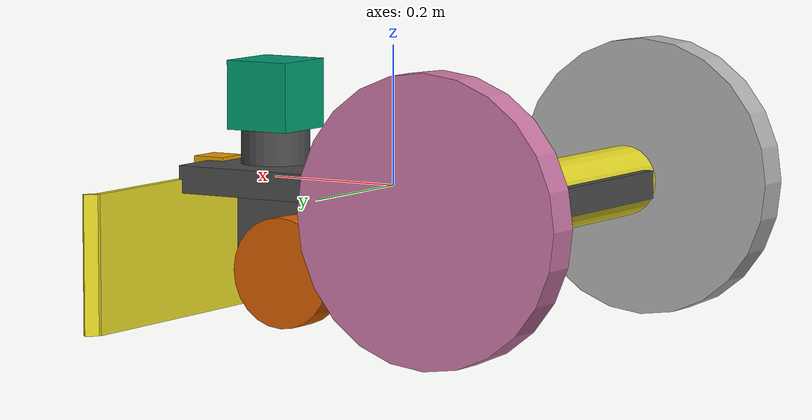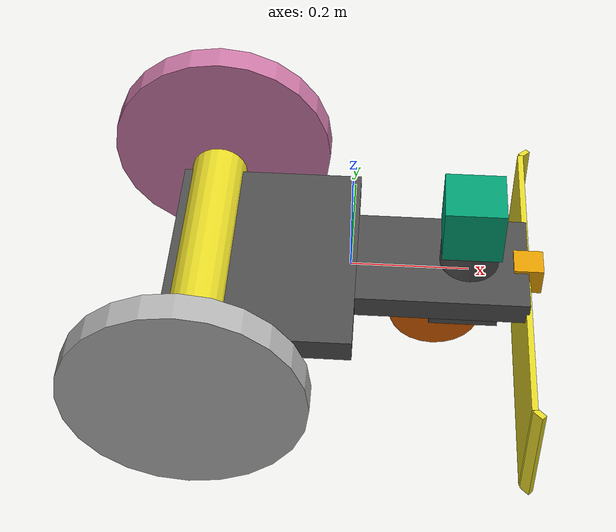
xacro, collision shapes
<?xml version='1.0'?>

<robot name="my_robot" xmlns:xacro="http://www.ros.org/wiki/xacro">

  <xacro:include filename="$(find my_robot)/urdf/my_robot.gazebo" />
  <link name="robot_footprint"></link>

  <joint name="robot_footprint_joint" type="fixed">
    <origin xyz="0 0 0" rpy="0 0 0" />
    <parent link="robot_footprint"/>
    <child link="chassis" />
  </joint>

  <link name='chassis'>
    <pose>0 0 0.1 0 0 0</pose>

    <inertial>
      <mass value="15.0"/>
      <origin xyz="0.0 0 0" rpy=" 0 0 0"/>
      <inertia
          ixx="0.1" ixy="0" ixz="0"
          iyy="0.1" iyz="0"
          izz="0.1"
      />
    </inertial>

    <collision>
      <origin xyz="-0.15 0 0" rpy=" 0 0 0"/>
      <geometry>
        <box size=".32 .4 .04"/>
      </geometry>
    </collision>

    <visual>
      <origin xyz="-0.15 0 0" rpy=" 0 0 0"/>
      <geometry>
        <box size=".32 .4 .04"/>
      </geometry>
    </visual>

    <collision>
      <origin xyz="0.15 0 0" rpy=" 0 0 0"/>
      <geometry>
        <box size=".3 .2 .04"/>
      </geometry>
    </collision>

    <visual>
      <origin xyz="0.15 0 0" rpy=" 0 0 0"/>
      <geometry>
        <box size=".3 .2 .04"/>
      </geometry>
    </visual>

    <collision>
      <origin xyz=".2 0 0.07" rpy=" 0 0 0"/>
      <geometry>
        <cylinder radius="0.05" length="0.1"/>
      </geometry>
    </collision>

    <visual>
      <origin xyz="0.2 0 0.07" rpy=" 0 0 0"/>
      <geometry>
        <cylinder radius="0.05" length="0.1"/>
      </geometry>
    </visual>
  </link>

  <link name='motor'>
    <collision>
      <origin xyz="0 0 0" rpy=" 0 1.5707 1.5707"/>
      <geometry>
        <cylinder radius="0.05" length="0.45"/>
      </geometry>
    </collision>

    <visual>
      <origin xyz="0 0 0" rpy=" 0 1.5707 1.5707"/>
      <geometry>
        <cylinder radius="0.05" length="0.45"/>
      </geometry>
    </visual>
  </link>

  <link name='plow'>
    <inertial>
        <origin xyx="0 0 0" rpy="0 0 0"/>
        <mass value="1"/>
        <inertia
        ixx="0.1" ixy="0" ixz="0"
        iyy="0.1" iyz="0"
        izz="0.2"
        />
     </inertial>
    <collision>
      <origin xyz="0 0 -0.1" rpy=" 0 0 0"/>
      <geometry>
        <box size="0.01 0.6 0.2"/>
      </geometry>
    </collision>

    <visual>
      <origin xyz="0 0 -0.1" rpy=" 0 0 0"/>
      <geometry>
        <box size="0.01 0.6 0.2"/>
      </geometry>
    </visual>

    <collision>
      <origin xyz="0.00707 0.30707 -0.1" rpy=" 0 0 -0.7854"/>
      <geometry>
        <box size="0.01 0.02 0.2"/>
      </geometry>
    </collision>

    <visual>
      <origin xyz="0.00707 0.30707 -0.1" rpy=" 0 0 -0.7854"/>
      <geometry>
        <box size="0.01 0.02 0.2"/>
      </geometry>
    </visual>

    <collision>
      <origin xyz="0.00707 -0.30707 -0.1" rpy=" 0 0 0.7854"/>
      <geometry>
        <box size="0.01 0.02 0.2"/>
      </geometry>
    </collision>

    <visual>
      <origin xyz="0.00707 -0.30707 -0.1" rpy=" 0 0 0.7854"/>
      <geometry>
        <box size="0.01 0.02 0.2"/>
      </geometry>
    </visual>
  </link>

  <link name='fork'>
     <inertial>
        <origin xyx="0 0 0" rpy="0 0 0"/>
        <mass value="2"/>
        <inertia
        ixx="0.1" ixy="0" ixz="0"
        iyy="0.1" iyz="0"
        izz="0.2"
        />
     </inertial>

     <collision name="fork_collision">
       <origin xyx="0 0 0" rpy="0 0 0"/>
       <geometry>
         <box size="0.12 0.02 0.1"/>
       </geometry>
     </collision>
     <visual name="fork_visual">
       <origin xyx="0 0 0" rpy="0 0 0"/>
       <geometry>
         <box size="0.12 0.02 0.1"/>
       </geometry>
     </visual>
  </link>

  <link name='front_wheel'>
    <inertial>
      <origin xyz="0 0 0" rpy="0 1.5707 1.5707"/>
      <mass value="5"/>
      <inertia
      ixx="0.1" ixy="0" ixz="0"
      iyy="0.1" iyz="0"
      izz="0.1"
      />
    </inertial>

    <collision name='front_wheel_collision'>
      <origin xyz="0 0 0" rpy="0 1.5707 1.5707"/>
      <geometry>
        <cylinder radius="0.08" length="0.05"/>
      </geometry>
    </collision>

    <visual name='front_wheel_visual'>
      <origin xyz="0 0 0" rpy="0 0 1.5707"/>
      <geometry>
        <mesh filename="package://my_robot/meshes/wheel_model.dae" scale=".9 0.9 0.9"/>
      </geometry>
    </visual>
  </link>

   <link name='rear_left_wheel'>
    <inertial>
      <origin xyz="0 0 0" rpy="0 1.5707 1.5707"/>
      <mass value="5"/>
      <inertia
      ixx="0.1" ixy="0" ixz="0"
      iyy="0.1" iyz="0"
      izz="0.1"
      />
    </inertial>

    <collision name='rear_left_wheel_collision'>
      <origin xyz="0 0 0" rpy="0 1.5707 1.5707"/>
      <geometry>
        <cylinder radius="0.2" length="0.05"/>
      </geometry>
    </collision>

    <visual name='rear_left_wheel_visual'>
      <origin xyz="0 0 0" rpy="0 0 1.5707"/>
      <geometry>
        <mesh filename="package://my_robot/meshes/wheel_model.dae" scale="2 2 2"/>
      </geometry>
    </visual>
  </link>

  <link name='rear_right_wheel'>
    <inertial>
      <origin xyz="0 0 0" rpy="0 1.5707 1.5707"/>
      <mass value="5"/>
      <inertia
      ixx="0.1" ixy="0" ixz="0"
      iyy="0.1" iyz="0"
      izz="0.1"
      />
    </inertial>

    <collision name='rear_right_wheel_collision'>
      <origin xyz="0 0 0" rpy="0 1.5707 1.5707"/>
      <geometry>
        <cylinder radius="0.2" length="0.05"/>
      </geometry>
    </collision>

    <visual name='rear_right_wheel_visual'>
      <origin xyz="0 0 0" rpy="0 0 1.5707"/>
      <geometry>
        <mesh filename="package://my_robot/meshes/wheel_model.dae" scale="2 2 2"/>
      </geometry>
    </visual>
  </link>

  <link name="camera">
    <origin xyz="0 0 0" rpy="0 0 0"/>
    <inertial>
      <mass value="0.1"/>
      <inertia
      ixx="1e-6" ixy="0" ixz="0"
      iyy="1e-6" iyz="0"
      izz="1e-6"
      />
    </inertial>

    <collision name="camera_collision">
      <origin xyx="0 0 0" rpy="0 0 0"/>
      <geometry>
        <box size="0.05 0.05 0.05"/>
      </geometry>
    </collision>

    <visual name="camera_visual">
      <origin xyx="0 0 0" rpy="0 0 0"/>
      <geometry>
        <box size="0.05 0.05 0.05"/>
      </geometry>
    </visual>

  </link>

  <link name="camera_link_optical">
  </link>

  <link name="hokuyo">
    <origin xyz="0 0 0" rpy="0 0 0"/>
    <inertial>
      <mass value="1e-5"/>
      <inertia
      ixx="1e-6" ixy="0" ixz="0"
      iyy="1e-6" iyz="0"
      izz="1e-6"
      />
    </inertial>

    <collision name="hokuyo_collision">
      <origin xyx="0 0 0" rpy="0 0 0"/>
      <geometry>
        <box size="0.1 0.1 0.1"/>
      </geometry>
    </collision>

    <visual name="hokuyo_visual">
      <origin xyx="0 0 0" rpy="0 0 0"/>
      <geometry>
        <mesh filename="package://my_robot/meshes/hokuyo.dae"/>
      </geometry>
    </visual>
  </link>

   <joint type="continuous" name="fork_top_hinge">
    <origin xyz="0.2 0.0 -0.08" rpy="0 0 0"/>
    <child link="fork"/>
    <parent link="chassis"/>
    <axis xyz="0 0 1" rpy="0 0 0"/>
  </joint>

  <joint type="continuous" name="front_wheel_hinge">
    <origin xyz="-0.05 0.04 -0.05" rpy="0 0 0"/>
    <child link="front_wheel"/>
    <parent link="fork"/>
    <axis xyz="0 1 0" rpy="0 0 0"/>
  </joint>

  <joint type="continuous" name="rear_left_wheel_hinge">
    <origin xyz="-0.25 0.3 0" rpy="0 0 0"/>
    <child link="rear_left_wheel"/>
    <parent link="chassis"/>
    <axis xyz="0 1 0" rpy="0 0 0"/>
    <limit effort="10000" velocity="1000"/>
    <dynamics damping="1.0" friction="0.0"/>
  </joint>

  <joint type="continuous" name="rear_right_wheel_hinge">
    <origin xyz="-0.25 -0.3 0" rpy="0 0 0"/>
    <child link="rear_right_wheel"/>
    <parent link="chassis"/>
    <axis xyz="0 1 0" rpy="0 0 0"/>
    <limit effort="10000" velocity="1000"/>
    <dynamics damping="1.0" friction="0.0"/>
  </joint>

  <joint type="fixed" name="camera_joint">
    <origin xyz="0.3 0 0" rpy="0 0 0"/>
    <child link="camera"/>
    <parent link="chassis"/>
    <axis xyz="0 1 0" rpy="0 0 0"/>
  </joint>

  <joint type="fixed" name="camera_optical_joint">
    <origin xyz="0 0 0" rpy="-1.5707 0 -1.5707"/>
    <child link="camera_link_optical"/>
    <parent link="camera"/>
  </joint>

  <joint type="fixed" name="hokuyo_joint">
    <origin xyz="0.2 0 0.12" rpy="0 0 0"/>
    <child link="hokuyo"/>
    <parent link="chassis"/>
    <axis xyz="0 1 0" rpy="0 0 0"/>
  </joint>

  <joint type="fixed" name="plow_joint">
    <origin xyz="0.3 0 0"/>
    <child link="plow"/>
    <parent link="chassis"/>
    <axis xyz="1 0 0" rpy="0 0 0"/>
  </joint>

  <joint type="fixed" name="motor_joint">
    <origin xyz="-0.25 0 0"/>
    <child link="motor"/>
    <parent link="chassis"/>
    <axis xyz="1 0 0" rpy="0 0 0"/>
  </joint>

</robot>
